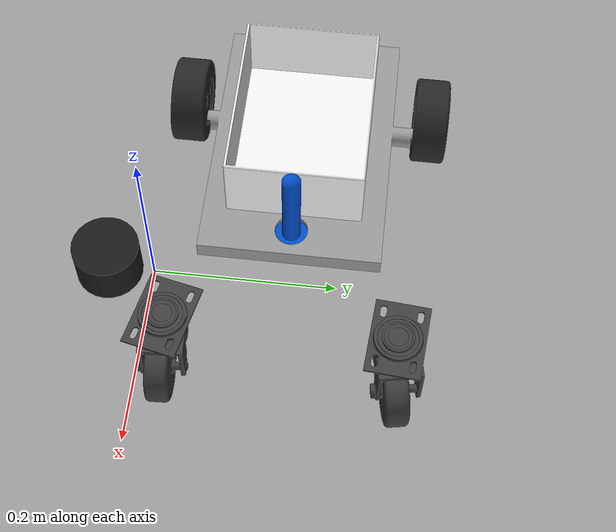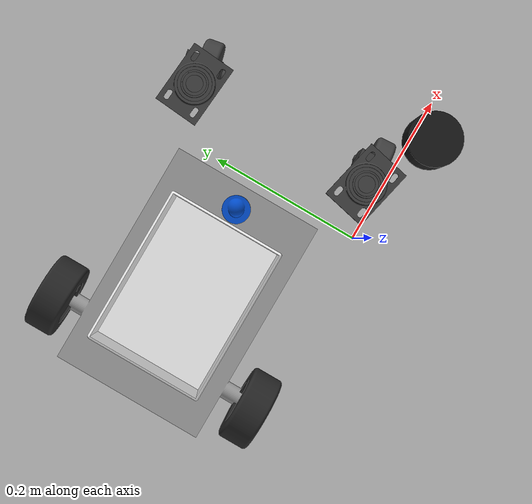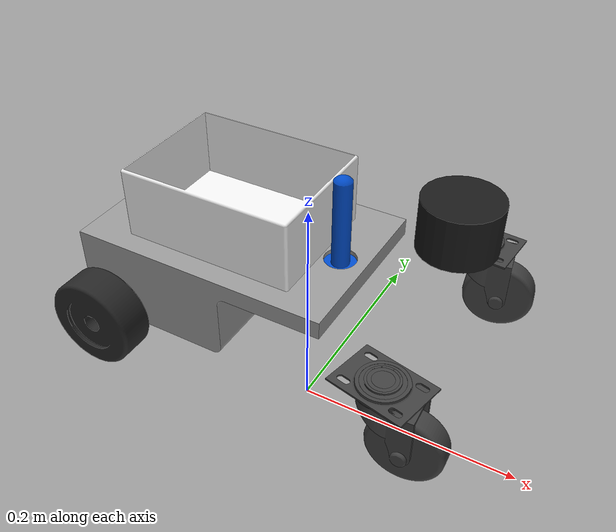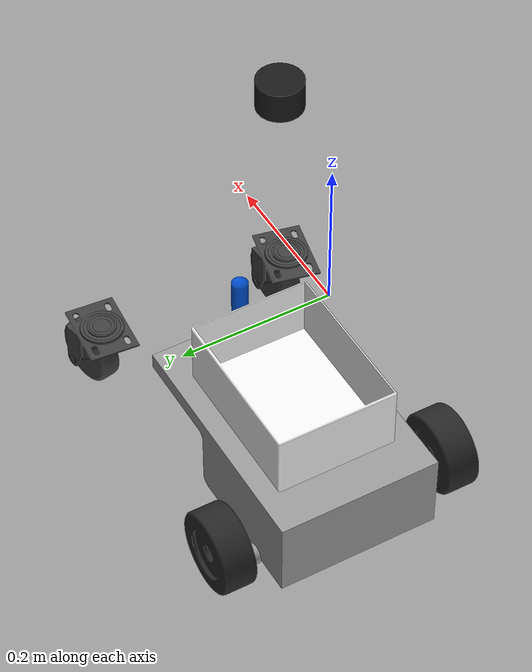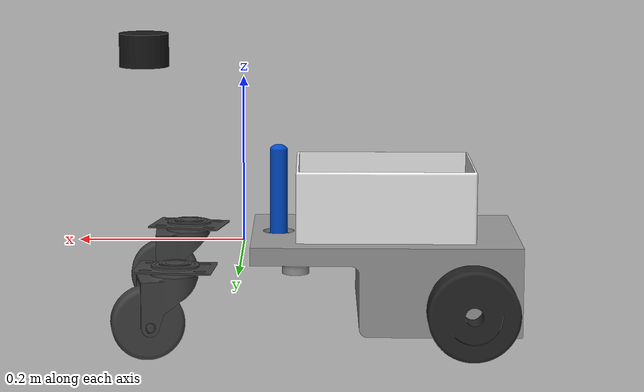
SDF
<sdf version='1.7'>
  <model name='hospital_robot'>
    <link name='base_link'>
      <inertial>
        <pose>0.005391 -0 0.067096 0 -0 0</pose>
        <mass>11.5</mass>
        <inertia>
          <ixx>0.104635</ixx>
          <ixy>-4.67621e-21</ixy>
          <ixz>-0.00304207</ixz>
          <iyy>0.102856</iyy>
          <iyz>-5.81962e-20</iyz>
          <izz>0.159271</izz>
        </inertia>
      </inertial>
      <collision name='base_link_collision'>
        <pose>0 0 0.056 0 -0 0</pose>
        <geometry>
          <box>
            <size>0.3 0.29 0.112</size>
          </box>
        </geometry>
        <surface>
          <contact>
            <ode/>
          </contact>
          <friction>
            <ode/>
          </friction>
        </surface>
      </collision>
      <collision name='base_link_fixed_joint_lump__front_caster_1_collision_1'>
        <pose>0.13 -0.065 0.025 0 -0 0</pose>
        <geometry>
          <sphere>
            <radius>0.025</radius>
          </sphere>
        </geometry>
        <surface>
          <contact>
            <ode/>
          </contact>
          <friction>
            <ode>
              <mu>0</mu>
              <mu2>0</mu2>
            </ode>
          </friction>
        </surface>
      </collision>
      <collision name='base_link_fixed_joint_lump__front_caster_3_collision_2'>
        <pose>0.13 0.065 0.025 0 -0 0</pose>
        <geometry>
          <sphere>
            <radius>0.025</radius>
          </sphere>
        </geometry>
        <surface>
          <contact>
            <ode/>
          </contact>
          <friction>
            <ode>
              <mu>0</mu>
              <mu2>0</mu2>
            </ode>
          </friction>
        </surface>
      </collision>
      <collision name='base_link_fixed_joint_lump__lidar_mount_collision_3'>
        <pose>0.12 0 0.157 0 -0 0</pose>
        <geometry>
          <cylinder>
            <length>0.11</length>
            <radius>0.02</radius>
          </cylinder>
        </geometry>
        <surface>
          <contact>
            <ode/>
          </contact>
          <friction>
            <ode/>
          </friction>
        </surface>
      </collision>
      <collision name='base_link_fixed_joint_lump__lidar_link_collision_4'>
        <pose>0.12 0 0.232 0 -0 0</pose>
        <geometry>
          <cylinder>
            <length>0.04</length>
            <radius>0.03</radius>
          </cylinder>
        </geometry>
        <surface>
          <contact>
            <ode/>
          </contact>
          <friction>
            <ode/>
          </friction>
        </surface>
      </collision>
      <collision name='base_link_fixed_joint_lump__payload_box_collision_5'>
        <pose>0 0 0.152 0 -0 0</pose>
        <geometry>
          <box>
            <size>0.2 0.15 0.08</size>
          </box>
        </geometry>
        <surface>
          <contact>
            <ode/>
          </contact>
          <friction>
            <ode/>
          </friction>
        </surface>
      </collision>
      <visual name='base_link_visual'>
        <pose>-0.16427 0.14645 -0.05935 1.5708 -0 0</pose>
        <geometry>
          <mesh>
            <scale>0.001 0.001 0.001</scale>
            <uri>model://hospital_robot_description/meshes/chassis.stl</uri>
          </mesh>
        </geometry>
        <material>
          <ambient>0.5 0.5 0.5 1</ambient>
          <diffuse>0.6 0.6 0.6 1</diffuse>
          <specular>0.1 0.1 0.1 1</specular>
        </material>
      </visual>
      <visual name='base_link_fixed_joint_lump__front_caster_1_visual_1'>
        <pose>-0.03427 0.08145 -0.03435 1.5708 -0 0</pose>
        <geometry>
          <mesh>
            <scale>0.001 0.001 0.001</scale>
            <uri>model://hospital_robot_description/meshes/caster1_wheel.stl</uri>
          </mesh>
        </geometry>
        <material>
          <ambient>0.2 0.2 0.2 1</ambient>
          <diffuse>0.25 0.25 0.25 1</diffuse>
          <specular>0.3 0.3 0.3 1</specular>
        </material>
      </visual>
      <visual name='base_link_fixed_joint_lump__front_caster_1_visual_2'>
        <pose>-0.03427 0.08145 -0.03435 1.5708 -0 0</pose>
        <geometry>
          <mesh>
            <scale>0.001 0.001 0.001</scale>
            <uri>model://hospital_robot_description/meshes/caster1_fork.stl</uri>
          </mesh>
        </geometry>
        <material>
          <ambient>0.2 0.2 0.2 1</ambient>
          <diffuse>0.25 0.25 0.25 1</diffuse>
          <specular>0.3 0.3 0.3 1</specular>
        </material>
      </visual>
      <visual name='base_link_fixed_joint_lump__front_caster_1_visual_3'>
        <pose>-0.03427 0.08145 -0.03435 1.5708 -0 0</pose>
        <geometry>
          <mesh>
            <scale>0.001 0.001 0.001</scale>
            <uri>model://hospital_robot_description/meshes/caster1_topfork1.stl</uri>
          </mesh>
        </geometry>
        <material>
          <ambient>0.2 0.2 0.2 1</ambient>
          <diffuse>0.25 0.25 0.25 1</diffuse>
          <specular>0.3 0.3 0.3 1</specular>
        </material>
      </visual>
      <visual name='base_link_fixed_joint_lump__front_caster_1_visual_4'>
        <pose>-0.03427 0.08145 -0.03435 1.5708 -0 0</pose>
        <geometry>
          <mesh>
            <scale>0.001 0.001 0.001</scale>
            <uri>model://hospital_robot_description/meshes/caster1_topfork2.stl</uri>
          </mesh>
        </geometry>
        <material>
          <ambient>0.2 0.2 0.2 1</ambient>
          <diffuse>0.25 0.25 0.25 1</diffuse>
          <specular>0.3 0.3 0.3 1</specular>
        </material>
      </visual>
      <visual name='base_link_fixed_joint_lump__front_caster_1_visual_5'>
        <pose>-0.03427 0.08145 -0.03435 1.5708 -0 0</pose>
        <geometry>
          <mesh>
            <scale>0.001 0.001 0.001</scale>
            <uri>model://hospital_robot_description/meshes/caster1_shaft.stl</uri>
          </mesh>
        </geometry>
        <material>
          <ambient>0.2 0.2 0.2 1</ambient>
          <diffuse>0.25 0.25 0.25 1</diffuse>
          <specular>0.3 0.3 0.3 1</specular>
        </material>
      </visual>
      <visual name='base_link_fixed_joint_lump__front_caster_1_visual_6'>
        <pose>-0.03427 0.08145 -0.03435 1.5708 -0 0</pose>
        <geometry>
          <mesh>
            <scale>0.001 0.001 0.001</scale>
            <uri>model://hospital_robot_description/meshes/caster1_bash2.stl</uri>
          </mesh>
        </geometry>
        <material>
          <ambient>0.2 0.2 0.2 1</ambient>
          <diffuse>0.25 0.25 0.25 1</diffuse>
          <specular>0.3 0.3 0.3 1</specular>
        </material>
      </visual>
      <visual name='base_link_fixed_joint_lump__front_caster_1_visual_7'>
        <pose>-0.03427 0.08145 -0.03435 1.5708 -0 0</pose>
        <geometry>
          <mesh>
            <scale>0.001 0.001 0.001</scale>
            <uri>model://hospital_robot_description/meshes/caster1_bash3.stl</uri>
          </mesh>
        </geometry>
        <material>
          <ambient>0.2 0.2 0.2 1</ambient>
          <diffuse>0.25 0.25 0.25 1</diffuse>
          <specular>0.3 0.3 0.3 1</specular>
        </material>
      </visual>
      <visual name='base_link_fixed_joint_lump__front_caster_1_visual_8'>
        <pose>-0.03427 0.08145 -0.03435 1.5708 -0 0</pose>
        <geometry>
          <mesh>
            <scale>0.001 0.001 0.001</scale>
            <uri>model://hospital_robot_description/meshes/caster1_bearing1.stl</uri>
          </mesh>
        </geometry>
        <material>
          <ambient>0.2 0.2 0.2 1</ambient>
          <diffuse>0.25 0.25 0.25 1</diffuse>
          <specular>0.3 0.3 0.3 1</specular>
        </material>
      </visual>
      <visual name='base_link_fixed_joint_lump__front_caster_1_visual_9'>
        <pose>-0.03427 0.08145 -0.03435 1.5708 -0 0</pose>
        <geometry>
          <mesh>
            <scale>0.001 0.001 0.001</scale>
            <uri>model://hospital_robot_description/meshes/caster1_bearing2.stl</uri>
          </mesh>
        </geometry>
        <material>
          <ambient>0.2 0.2 0.2 1</ambient>
          <diffuse>0.25 0.25 0.25 1</diffuse>
          <specular>0.3 0.3 0.3 1</specular>
        </material>
      </visual>
      <visual name='base_link_fixed_joint_lump__front_caster_1_visual_10'>
        <pose>-0.03427 0.08145 -0.03435 1.5708 -0 0</pose>
        <geometry>
          <mesh>
            <scale>0.001 0.001 0.001</scale>
            <uri>model://hospital_robot_description/meshes/caster1_snapring.stl</uri>
          </mesh>
        </geometry>
        <material>
          <ambient>0.2 0.2 0.2 1</ambient>
          <diffuse>0.25 0.25 0.25 1</diffuse>
          <specular>0.3 0.3 0.3 1</specular>
        </material>
      </visual>
      <visual name='base_link_fixed_joint_lump__front_caster_3_visual_11'>
        <pose>-0.03427 0.21145 -0.03435 1.5708 -0 0</pose>
        <geometry>
          <mesh>
            <scale>0.001 0.001 0.001</scale>
            <uri>model://hospital_robot_description/meshes/caster3_wheel.stl</uri>
          </mesh>
        </geometry>
        <material>
          <ambient>0.2 0.2 0.2 1</ambient>
          <diffuse>0.25 0.25 0.25 1</diffuse>
          <specular>0.3 0.3 0.3 1</specular>
        </material>
      </visual>
      <visual name='base_link_fixed_joint_lump__front_caster_3_visual_12'>
        <pose>-0.03427 0.21145 -0.03435 1.5708 -0 0</pose>
        <geometry>
          <mesh>
            <scale>0.001 0.001 0.001</scale>
            <uri>model://hospital_robot_description/meshes/caster3_fork.stl</uri>
          </mesh>
        </geometry>
        <material>
          <ambient>0.2 0.2 0.2 1</ambient>
          <diffuse>0.25 0.25 0.25 1</diffuse>
          <specular>0.3 0.3 0.3 1</specular>
        </material>
      </visual>
      <visual name='base_link_fixed_joint_lump__front_caster_3_visual_13'>
        <pose>-0.03427 0.21145 -0.03435 1.5708 -0 0</pose>
        <geometry>
          <mesh>
            <scale>0.001 0.001 0.001</scale>
            <uri>model://hospital_robot_description/meshes/caster3_topfork1.stl</uri>
          </mesh>
        </geometry>
        <material>
          <ambient>0.2 0.2 0.2 1</ambient>
          <diffuse>0.25 0.25 0.25 1</diffuse>
          <specular>0.3 0.3 0.3 1</specular>
        </material>
      </visual>
      <visual name='base_link_fixed_joint_lump__front_caster_3_visual_14'>
        <pose>-0.03427 0.21145 -0.03435 1.5708 -0 0</pose>
        <geometry>
          <mesh>
            <scale>0.001 0.001 0.001</scale>
            <uri>model://hospital_robot_description/meshes/caster3_topfork2.stl</uri>
          </mesh>
        </geometry>
        <material>
          <ambient>0.2 0.2 0.2 1</ambient>
          <diffuse>0.25 0.25 0.25 1</diffuse>
          <specular>0.3 0.3 0.3 1</specular>
        </material>
      </visual>
      <visual name='base_link_fixed_joint_lump__front_caster_3_visual_15'>
        <pose>-0.03427 0.21145 -0.03435 1.5708 -0 0</pose>
        <geometry>
          <mesh>
            <scale>0.001 0.001 0.001</scale>
            <uri>model://hospital_robot_description/meshes/caster3_shaft.stl</uri>
          </mesh>
        </geometry>
        <material>
          <ambient>0.2 0.2 0.2 1</ambient>
          <diffuse>0.25 0.25 0.25 1</diffuse>
          <specular>0.3 0.3 0.3 1</specular>
        </material>
      </visual>
      <visual name='base_link_fixed_joint_lump__front_caster_3_visual_16'>
        <pose>-0.03427 0.21145 -0.03435 1.5708 -0 0</pose>
        <geometry>
          <mesh>
            <scale>0.001 0.001 0.001</scale>
            <uri>model://hospital_robot_description/meshes/caster3_bash2.stl</uri>
          </mesh>
        </geometry>
        <material>
          <ambient>0.2 0.2 0.2 1</ambient>
          <diffuse>0.25 0.25 0.25 1</diffuse>
          <specular>0.3 0.3 0.3 1</specular>
        </material>
      </visual>
      <visual name='base_link_fixed_joint_lump__front_caster_3_visual_17'>
        <pose>-0.03427 0.21145 -0.03435 1.5708 -0 0</pose>
        <geometry>
          <mesh>
            <scale>0.001 0.001 0.001</scale>
            <uri>model://hospital_robot_description/meshes/caster3_bash3.stl</uri>
          </mesh>
        </geometry>
        <material>
          <ambient>0.2 0.2 0.2 1</ambient>
          <diffuse>0.25 0.25 0.25 1</diffuse>
          <specular>0.3 0.3 0.3 1</specular>
        </material>
      </visual>
      <visual name='base_link_fixed_joint_lump__front_caster_3_visual_18'>
        <pose>-0.03427 0.21145 -0.03435 1.5708 -0 0</pose>
        <geometry>
          <mesh>
            <scale>0.001 0.001 0.001</scale>
            <uri>model://hospital_robot_description/meshes/caster3_bearing1.stl</uri>
          </mesh>
        </geometry>
        <material>
          <ambient>0.2 0.2 0.2 1</ambient>
          <diffuse>0.25 0.25 0.25 1</diffuse>
          <specular>0.3 0.3 0.3 1</specular>
        </material>
      </visual>
      <visual name='base_link_fixed_joint_lump__front_caster_3_visual_19'>
        <pose>-0.03427 0.21145 -0.03435 1.5708 -0 0</pose>
        <geometry>
          <mesh>
            <scale>0.001 0.001 0.001</scale>
            <uri>model://hospital_robot_description/meshes/caster3_bearing2.stl</uri>
          </mesh>
        </geometry>
        <material>
          <ambient>0.2 0.2 0.2 1</ambient>
          <diffuse>0.25 0.25 0.25 1</diffuse>
          <specular>0.3 0.3 0.3 1</specular>
        </material>
      </visual>
      <visual name='base_link_fixed_joint_lump__front_caster_3_visual_20'>
        <pose>-0.03427 0.21145 -0.03435 1.5708 -0 0</pose>
        <geometry>
          <mesh>
            <scale>0.001 0.001 0.001</scale>
            <uri>model://hospital_robot_description/meshes/caster3_snapring.stl</uri>
          </mesh>
        </geometry>
        <material>
          <ambient>0.2 0.2 0.2 1</ambient>
          <diffuse>0.25 0.25 0.25 1</diffuse>
          <specular>0.3 0.3 0.3 1</specular>
        </material>
      </visual>
      <visual name='base_link_fixed_joint_lump__lidar_mount_visual_21'>
        <pose>-0.16427 0.14645 -0.05935 1.5708 -0 0</pose>
        <geometry>
          <mesh>
            <scale>0.001 0.001 0.001</scale>
            <uri>model://hospital_robot_description/meshes/lidar_mount.stl</uri>
          </mesh>
        </geometry>
        <material>
          <ambient>0 0.3 0.8 1</ambient>
          <diffuse>0 0.3 0.8 1</diffuse>
          <specular>0.1 0.1 0.1 1</specular>
        </material>
      </visual>
      <visual name='base_link_fixed_joint_lump__lidar_link_visual_22'>
        <pose>0.12 0 0.232 0 -0 0</pose>
        <geometry>
          <cylinder>
            <length>0.04</length>
            <radius>0.03</radius>
          </cylinder>
        </geometry>
        <material>
          <ambient>0.1 0.1 0.1 1</ambient>
          <diffuse>0.1 0.1 0.1 1</diffuse>
          <specular>0.2 0.2 0.2 1</specular>
        </material>
      </visual>
      <visual name='base_link_fixed_joint_lump__payload_box_visual_23'>
        <pose>-0.16427 0.14645 -0.05935 1.5708 -0 0</pose>
        <geometry>
          <mesh>
            <scale>0.001 0.001 0.001</scale>
            <uri>model://hospital_robot_description/meshes/payload_box.stl</uri>
          </mesh>
        </geometry>
        <material>
          <ambient>0.95 0.95 0.95 1</ambient>
          <diffuse>0.95 0.95 0.95 1</diffuse>
          <specular>0.05 0.05 0.05 1</specular>
        </material>
      </visual>
    </link>
    <joint name='left_wheel_joint' type='revolute'>
      <pose relative_to='base_link'>-0.092 0.145 0.05 0 -0 0</pose>
      <parent>base_link</parent>
      <child>left_wheel</child>
      <axis>
        <xyz>0 1 0</xyz>
        <limit>
          <lower>-1e+16</lower>
          <upper>1e+16</upper>
        </limit>
        <dynamics>
          <damping>0.1</damping>
          <friction>0.1</friction>
          <spring_reference>0</spring_reference>
          <spring_stiffness>0</spring_stiffness>
        </dynamics>
      </axis>
    </joint>
    <link name='left_wheel'>
      <pose relative_to='left_wheel_joint'>0 0 0 0 -0 0</pose>
      <inertial>
        <pose>0 0 0 0 -0 0</pose>
        <mass>0.5</mass>
        <inertia>
          <ixx>0.0058</ixx>
          <ixy>0</ixy>
          <ixz>0</ixz>
          <iyy>0.0058</iyy>
          <iyz>0</iyz>
          <izz>0.0063</izz>
        </inertia>
      </inertial>
      <collision name='left_wheel_collision'>
        <pose>0 0 0 1.5708 -0 0</pose>
        <geometry>
          <cylinder>
            <length>0.04</length>
            <radius>0.05</radius>
          </cylinder>
        </geometry>
        <surface>
          <contact>
            <ode/>
          </contact>
          <friction>
            <ode>
              <mu>0.8</mu>
              <mu2>0.8</mu2>
            </ode>
          </friction>
        </surface>
      </collision>
      <visual name='left_wheel_visual'>
        <pose>-0.07227 0.02645 -0.07135 1.5708 -0 0</pose>
        <geometry>
          <mesh>
            <scale>0.001 0.001 0.001</scale>
            <uri>model://hospital_robot_description/meshes/wheel_left.stl</uri>
          </mesh>
        </geometry>
        <material>
          <ambient>0.1 0.1 0.1 1</ambient>
          <diffuse>0.15 0.15 0.15 1</diffuse>
          <specular>0.05 0.05 0.05 1</specular>
        </material>
      </visual>
    </link>
    <joint name='right_wheel_joint' type='revolute'>
      <pose relative_to='base_link'>-0.092 -0.145 0.05 0 -0 0</pose>
      <parent>base_link</parent>
      <child>right_wheel</child>
      <axis>
        <xyz>0 1 0</xyz>
        <limit>
          <lower>-1e+16</lower>
          <upper>1e+16</upper>
        </limit>
        <dynamics>
          <damping>0.1</damping>
          <friction>0.1</friction>
          <spring_reference>0</spring_reference>
          <spring_stiffness>0</spring_stiffness>
        </dynamics>
      </axis>
    </joint>
    <link name='right_wheel'>
      <pose relative_to='right_wheel_joint'>0 0 0 0 -0 0</pose>
      <inertial>
        <pose>0 0 0 0 -0 0</pose>
        <mass>0.5</mass>
        <inertia>
          <ixx>0.0058</ixx>
          <ixy>0</ixy>
          <ixz>0</ixz>
          <iyy>0.0058</iyy>
          <iyz>0</iyz>
          <izz>0.0063</izz>
        </inertia>
      </inertial>
      <collision name='right_wheel_collision'>
        <pose>0 0 0 1.5708 -0 0</pose>
        <geometry>
          <cylinder>
            <length>0.04</length>
            <radius>0.05</radius>
          </cylinder>
        </geometry>
        <surface>
          <contact>
            <ode/>
          </contact>
          <friction>
            <ode>
              <mu>0.8</mu>
              <mu2>0.8</mu2>
            </ode>
          </friction>
        </surface>
      </collision>
      <visual name='right_wheel_visual'>
        <pose>-0.07227 0.26645 -0.07135 1.5708 -0 0</pose>
        <geometry>
          <mesh>
            <scale>0.001 0.001 0.001</scale>
            <uri>model://hospital_robot_description/meshes/wheel_right.stl</uri>
          </mesh>
        </geometry>
        <material>
          <ambient>0.1 0.1 0.1 1</ambient>
          <diffuse>0.15 0.15 0.15 1</diffuse>
          <specular>0.05 0.05 0.05 1</specular>
        </material>
      </visual>
    </link>
    <static>0</static>
    <plugin name='ignition::gazebo::systems::DiffDrive' filename='libignition-gazebo-diff-drive-system.so'>
      <left_joint>left_wheel_joint</left_joint>
      <right_joint>right_wheel_joint</right_joint>
      <wheel_separation>0.290</wheel_separation>
      <wheel_radius>0.050</wheel_radius>
      <odom_publish_frequency>10</odom_publish_frequency>
      <topic>cmd_vel</topic>
      <odom_topic>odom</odom_topic>
      <frame_id>odom</frame_id>
      <child_frame_id>base_link</child_frame_id>
    </plugin>
  </model>
</sdf>
